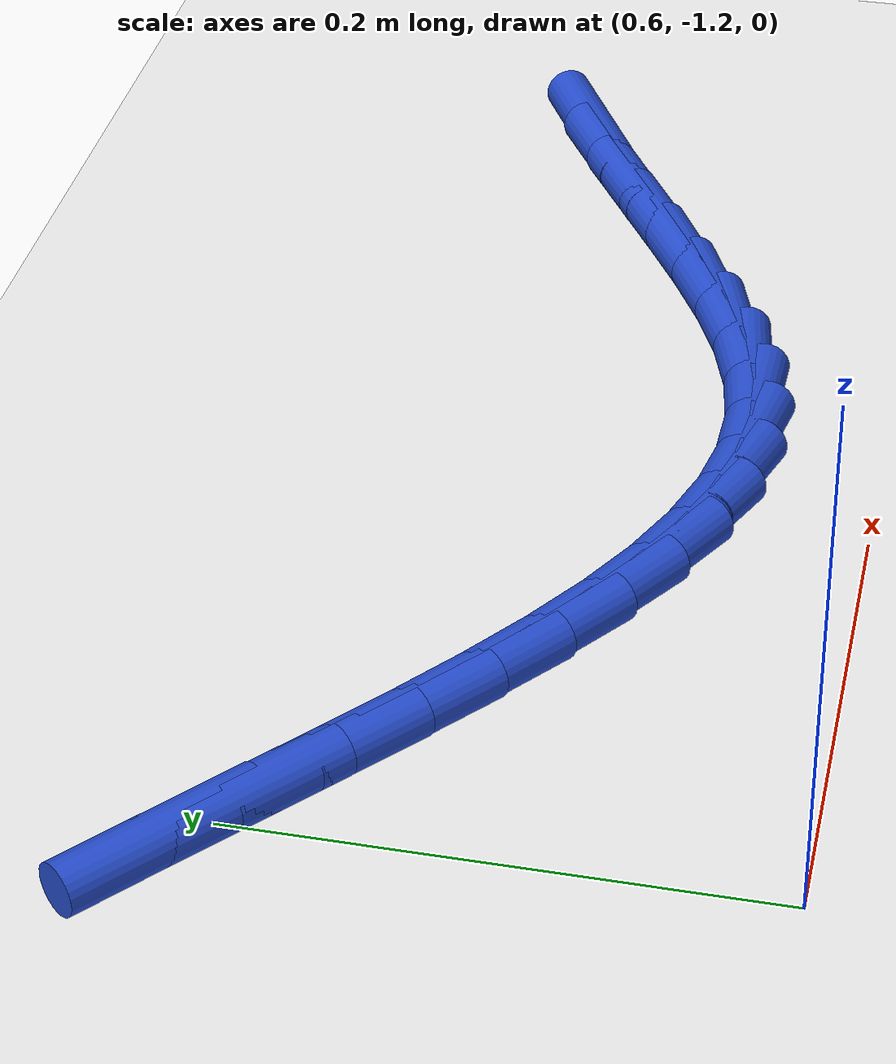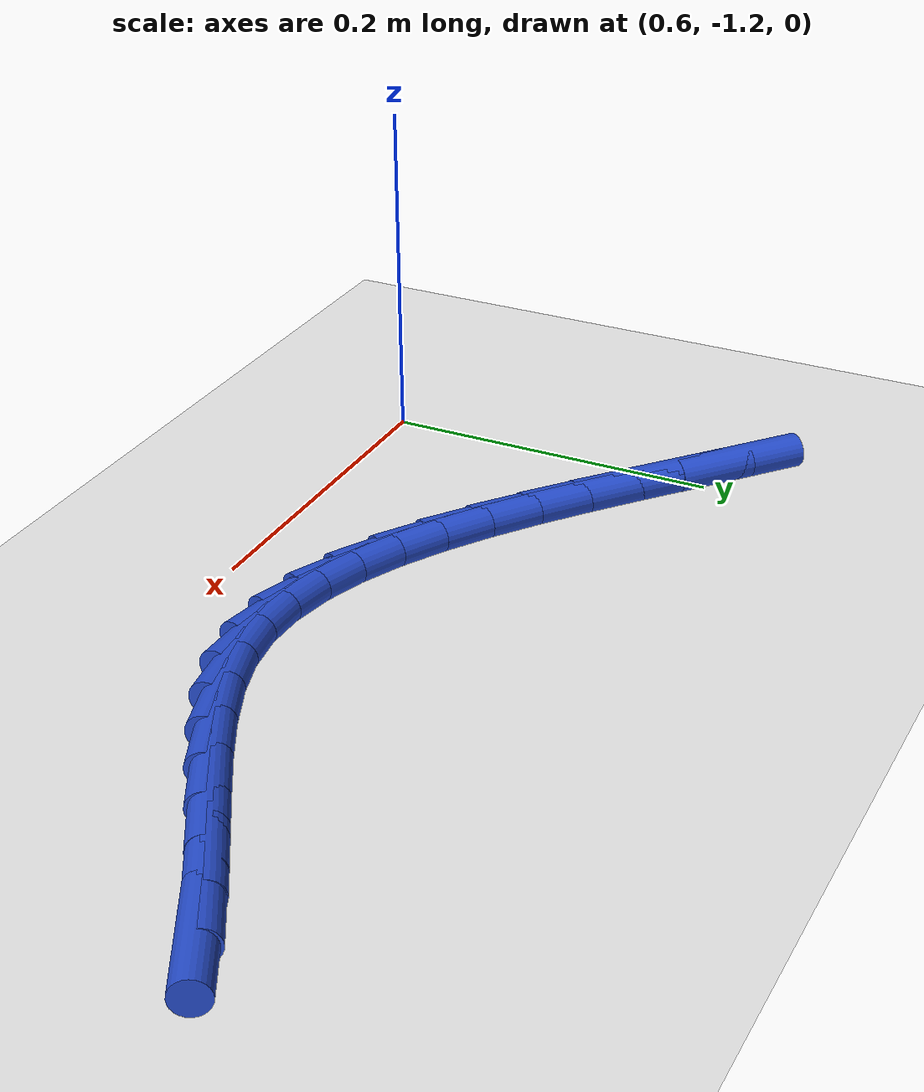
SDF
<sdf version="1.6">
 <world name="default">
  <model name="ground_plane">
   <static>1</static>
   <link name="link">
    <collision name="collision">
     <geometry><plane><normal>0 0 1</normal><size>100 100</size></plane></geometry>
     <surface><friction><ode><mu>100</mu><mu2>50</mu2></ode></friction></surface>
    </collision>
    <visual name="visual">
     <cast_shadows>0</cast_shadows>
     <geometry><plane><normal>0 0 1</normal><size>100 100</size></plane></geometry>
     <material>
      <script><uri>file://media/materials/scripts/gazebo.material</uri><name>Gazebo/WhiteGlow</name></script>
     </material>
    </visual>
   </link>
  </model>
  <model name="line">
   <link name="link_181">
    <pose>1.0715077725190265 -1.046082874175574 0.01 0 1.57 0.48696132678174037</pose>
    <collision name="collision">
     <geometry><cylinder><radius>0.01</radius><length>0.08</length></cylinder></geometry>
    </collision>
    <visual name="visual">
     <material>
      <script><name>Gazebo/Blue</name><uri>file://media/materials/scripts/gazebo.material</uri></script>
     </material>
     <geometry><cylinder><radius>0.01</radius><length>0.08</length></cylinder></geometry>
    </visual>
   </link>
   <link name="link_182">
    <pose>1.0443559645972726 -1.0604595193281698 0.01 0 1.57 0.5273091132901597</pose>
    <collision name="collision">
     <geometry><cylinder><radius>0.01</radius><length>0.08</length></cylinder></geometry>
    </collision>
    <visual name="visual">
     <material>
      <script><name>Gazebo/Blue</name><uri>file://media/materials/scripts/gazebo.material</uri></script>
     </material>
     <geometry><cylinder><radius>0.01</radius><length>0.08</length></cylinder></geometry>
    </visual>
   </link>
   <link name="link_183">
    <pose>1.01736226141515 -1.0761781694289603 0.01 0 1.57 0.5411139704528223</pose>
    <collision name="collision">
     <geometry><cylinder><radius>0.01</radius><length>0.08</length></cylinder></geometry>
    </collision>
    <visual name="visual">
     <material>
      <script><name>Gazebo/Blue</name><uri>file://media/materials/scripts/gazebo.material</uri></script>
     </material>
     <geometry><cylinder><radius>0.01</radius><length>0.08</length></cylinder></geometry>
    </visual>
   </link>
   <link name="link_184">
    <pose>0.9905311825100949 -1.0923021687423708 0.01 0 1.57 0.5291574997793325</pose>
    <collision name="collision">
     <geometry><cylinder><radius>0.01</radius><length>0.08</length></cylinder></geometry>
    </collision>
    <visual name="visual">
     <material>
      <script><name>Gazebo/Blue</name><uri>file://media/materials/scripts/gazebo.material</uri></script>
     </material>
     <geometry><cylinder><radius>0.01</radius><length>0.08</length></cylinder></geometry>
    </visual>
   </link>
   <link name="link_185">
    <pose>0.963867247547126 -1.1078948603801184 0.01 0 1.57 0.48982553329395445</pose>
    <collision name="collision">
     <geometry><cylinder><radius>0.01</radius><length>0.08</length></cylinder></geometry>
    </collision>
    <visual name="visual">
     <material>
      <script><name>Gazebo/Blue</name><uri>file://media/materials/scripts/gazebo.material</uri></script>
     </material>
     <geometry><cylinder><radius>0.01</radius><length>0.08</length></cylinder></geometry>
    </visual>
   </link>
   <link name="link_186">
    <pose>0.9373749761912643 -1.1220195874539192 0.01 0 1.57 0.41898773799510075</pose>
    <collision name="collision">
     <geometry><cylinder><radius>0.01</radius><length>0.08</length></cylinder></geometry>
    </collision>
    <visual name="visual">
     <material>
      <script><name>Gazebo/Blue</name><uri>file://media/materials/scripts/gazebo.material</uri></script>
     </material>
     <geometry><cylinder><radius>0.01</radius><length>0.08</length></cylinder></geometry>
    </visual>
   </link>
   <link name="link_187">
    <pose>0.9110588881075287 -1.133739693075489 0.01 0 1.57 0.3102409687138646</pose>
    <collision name="collision">
     <geometry><cylinder><radius>0.01</radius><length>0.08</length></cylinder></geometry>
    </collision>
    <visual name="visual">
     <material>
      <script><name>Gazebo/Blue</name><uri>file://media/materials/scripts/gazebo.material</uri></script>
     </material>
     <geometry><cylinder><radius>0.01</radius><length>0.08</length></cylinder></geometry>
    </visual>
   </link>
   <link name="link_188">
    <pose>0.8849235029609389 -1.1421185203565454 0.01 0 1.57 0.15761317085324275</pose>
    <collision name="collision">
     <geometry><cylinder><radius>0.01</radius><length>0.08</length></cylinder></geometry>
    </collision>
    <visual name="visual">
     <material>
      <script><name>Gazebo/Blue</name><uri>file://media/materials/scripts/gazebo.material</uri></script>
     </material>
     <geometry><cylinder><radius>0.01</radius><length>0.08</length></cylinder></geometry>
    </visual>
   </link>
   <link name="link_189">
    <pose>0.858972827718726 -1.1462428977350345 0.01 0 1.57 -0.015957585090072005</pose>
    <collision name="collision">
     <geometry><cylinder><radius>0.01</radius><length>0.08</length></cylinder></geometry>
    </collision>
    <visual name="visual">
     <material>
      <script><name>Gazebo/Blue</name><uri>file://media/materials/scripts/gazebo.material</uri></script>
     </material>
     <geometry><cylinder><radius>0.01</radius><length>0.08</length></cylinder></geometry>
    </visual>
   </link>
   <link name="link_190">
    <pose>0.8331970748277941 -1.145831544048103 0.01 0 1.57 -0.17538017245639348</pose>
    <collision name="collision">
     <geometry><cylinder><radius>0.01</radius><length>0.08</length></cylinder></geometry>
    </collision>
    <visual name="visual">
     <material>
      <script><name>Gazebo/Blue</name><uri>file://media/materials/scripts/gazebo.material</uri></script>
     </material>
     <geometry><cylinder><radius>0.01</radius><length>0.08</length></cylinder></geometry>
    </visual>
   </link>
   <link name="link_191">
    <pose>0.8075714485103659 -1.1412906651103378 0.01 0 1.57 -0.3121637057367285</pose>
    <collision name="collision">
     <geometry><cylinder><radius>0.01</radius><length>0.08</length></cylinder></geometry>
    </collision>
    <visual name="visual">
     <material>
      <script><name>Gazebo/Blue</name><uri>file://media/materials/scripts/gazebo.material</uri></script>
     </material>
     <geometry><cylinder><radius>0.01</radius><length>0.08</length></cylinder></geometry>
    </visual>
   </link>
   <link name="link_192">
    <pose>0.782070397008766 -1.13306109617089 0.01 0 1.57 -0.42437553622568736</pose>
    <collision name="collision">
     <geometry><cylinder><radius>0.01</radius><length>0.08</length></cylinder></geometry>
    </collision>
    <visual name="visual">
     <material>
      <script><name>Gazebo/Blue</name><uri>file://media/materials/scripts/gazebo.material</uri></script>
     </material>
     <geometry><cylinder><radius>0.01</radius><length>0.08</length></cylinder></geometry>
    </visual>
   </link>
   <link name="link_193">
    <pose>0.7566683685653213 -1.1215836724789108 0.01 0 1.57 -0.5135023448792483</pose>
    <collision name="collision">
     <geometry><cylinder><radius>0.01</radius><length>0.08</length></cylinder></geometry>
    </collision>
    <visual name="visual">
     <material>
      <script><name>Gazebo/Blue</name><uri>file://media/materials/scripts/gazebo.material</uri></script>
     </material>
     <geometry><cylinder><radius>0.01</radius><length>0.08</length></cylinder></geometry>
    </visual>
   </link>
   <link name="link_194">
    <pose>0.7313398114223563 -1.1072992292835513 0.01 0 1.57 -0.5824192350969427</pose>
    <collision name="collision">
     <geometry><cylinder><radius>0.01</radius><length>0.08</length></cylinder></geometry>
    </collision>
    <visual name="visual">
     <material>
      <script><name>Gazebo/Blue</name><uri>file://media/materials/scripts/gazebo.material</uri></script>
     </material>
     <geometry><cylinder><radius>0.01</radius><length>0.08</length></cylinder></geometry>
    </visual>
   </link>
   <link name="link_195">
    <pose>0.7060591738221966 -1.0906486018339627 0.01 0 1.57 -0.6341182879358113</pose>
    <collision name="collision">
     <geometry><cylinder><radius>0.01</radius><length>0.08</length></cylinder></geometry>
    </collision>
    <visual name="visual">
     <material>
      <script><name>Gazebo/Blue</name><uri>file://media/materials/scripts/gazebo.material</uri></script>
     </material>
     <geometry><cylinder><radius>0.01</radius><length>0.08</length></cylinder></geometry>
    </visual>
   </link>
   <link name="link_196">
    <pose>0.6808009040071674 -1.0720726253792954 0.01 0 1.57 -0.671141989622054</pose>
    <collision name="collision">
     <geometry><cylinder><radius>0.01</radius><length>0.08</length></cylinder></geometry>
    </collision>
    <visual name="visual">
     <material>
      <script><name>Gazebo/Blue</name><uri>file://media/materials/scripts/gazebo.material</uri></script>
     </material>
     <geometry><cylinder><radius>0.01</radius><length>0.08</length></cylinder></geometry>
    </visual>
   </link>
   <link name="link_197">
    <pose>0.6555394502195945 -1.0520121351687015 0.01 0 1.57 -0.6954148809877727</pose>
    <collision name="collision">
     <geometry><cylinder><radius>0.01</radius><length>0.08</length></cylinder></geometry>
    </collision>
    <visual name="visual">
     <material>
      <script><name>Gazebo/Blue</name><uri>file://media/materials/scripts/gazebo.material</uri></script>
     </material>
     <geometry><cylinder><radius>0.01</radius><length>0.08</length></cylinder></geometry>
    </visual>
   </link>
   <link name="link_198">
    <pose>0.6302492607018028 -1.0309079664513319 0.01 0 1.57 -0.7082434445716559</pose>
    <collision name="collision">
     <geometry><cylinder><radius>0.01</radius><length>0.08</length></cylinder></geometry>
    </collision>
    <visual name="visual">
     <material>
      <script><name>Gazebo/Blue</name><uri>file://media/materials/scripts/gazebo.material</uri></script>
     </material>
     <geometry><cylinder><radius>0.01</radius><length>0.08</length></cylinder></geometry>
    </visual>
   </link>
   <link name="link_199">
    <pose>0.604904783696118 -1.009200954476337 0.01 0 1.57 -0.7103638822766328</pose>
    <collision name="collision">
     <geometry><cylinder><radius>0.01</radius><length>0.08</length></cylinder></geometry>
    </collision>
    <visual name="visual">
     <material>
      <script><name>Gazebo/Blue</name><uri>file://media/materials/scripts/gazebo.material</uri></script>
     </material>
     <geometry><cylinder><radius>0.01</radius><length>0.08</length></cylinder></geometry>
    </visual>
   </link>
   <link name="link_200">
    <pose>0.5794804674448649 -0.987331934492868 0.01 0 1.57 -0.7019859796032852</pose>
    <collision name="collision">
     <geometry><cylinder><radius>0.01</radius><length>0.08</length></cylinder></geometry>
    </collision>
    <visual name="visual">
     <material>
      <script><name>Gazebo/Blue</name><uri>file://media/materials/scripts/gazebo.material</uri></script>
     </material>
     <geometry><cylinder><radius>0.01</radius><length>0.08</length></cylinder></geometry>
    </visual>
   </link>
  </model>
 </world>
</sdf>
